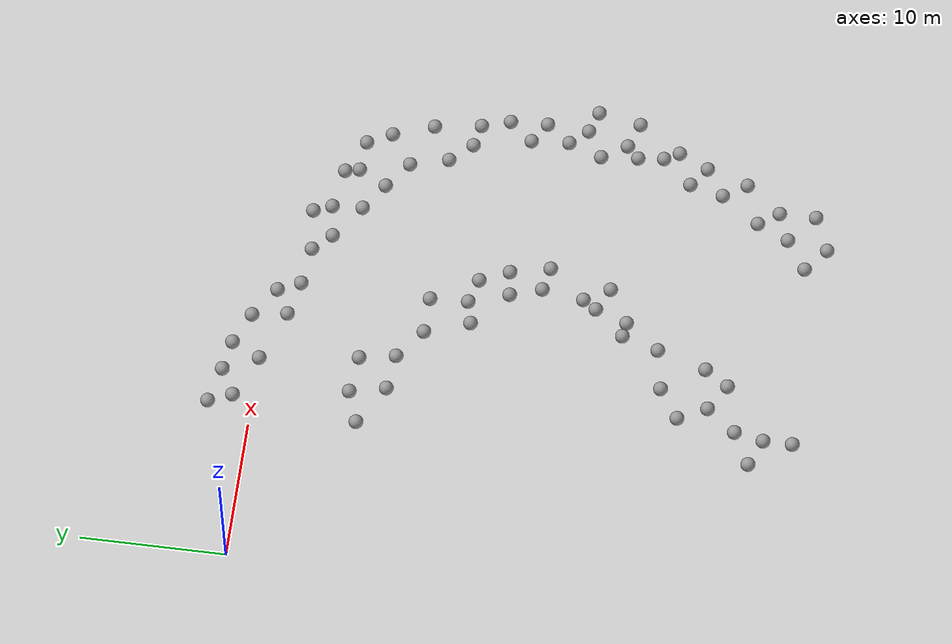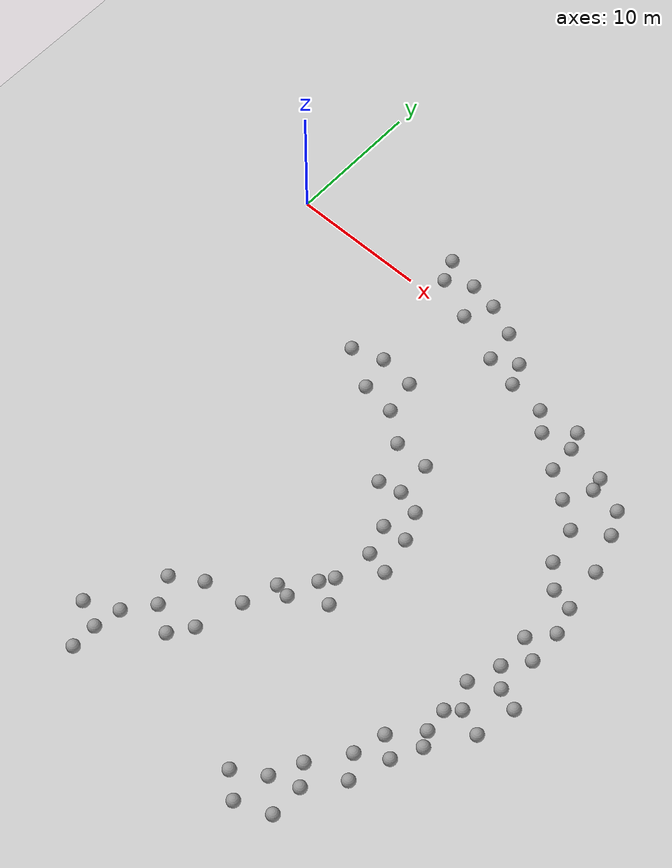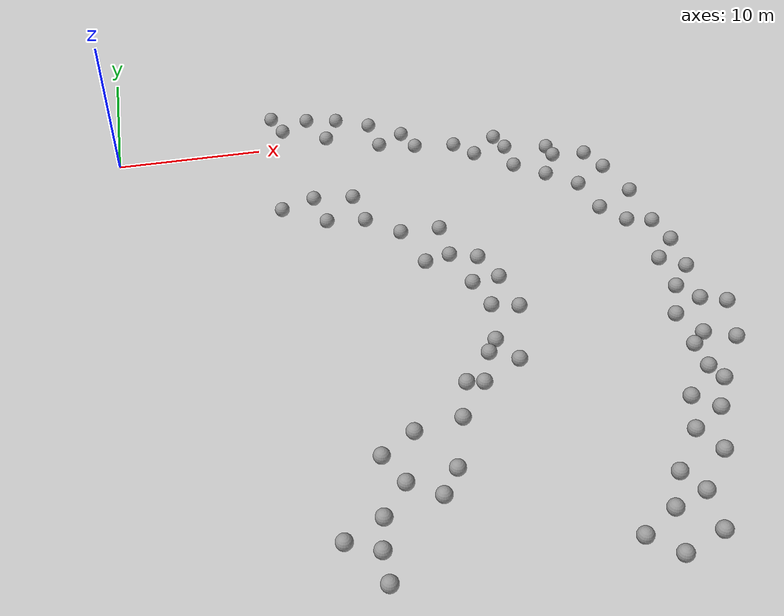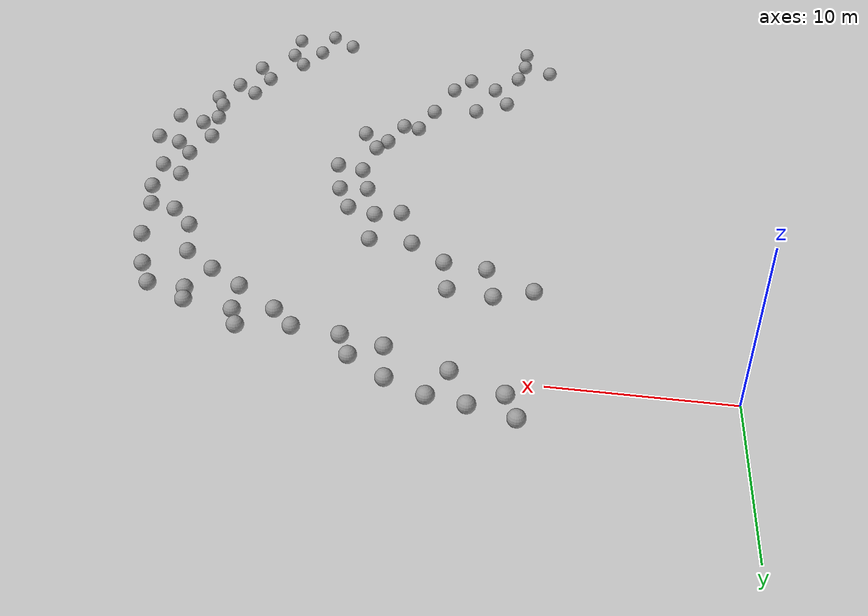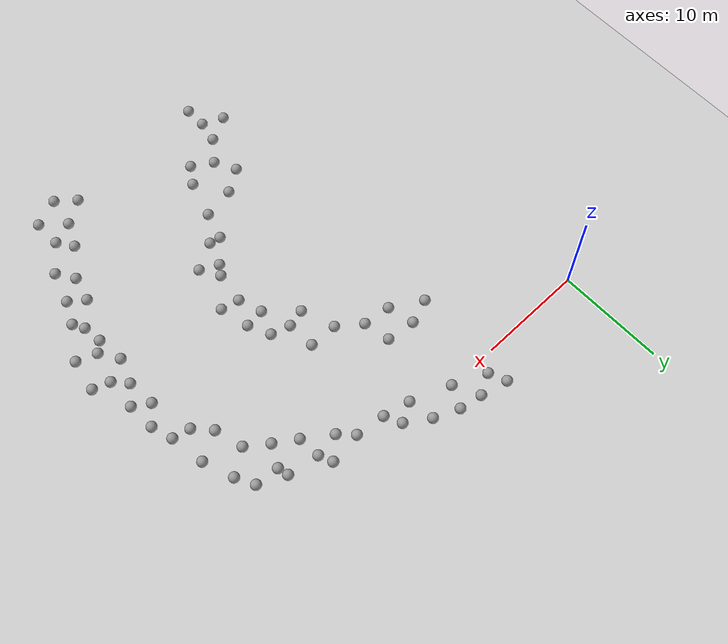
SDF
<sdf version="1.6">
 <world name="default">
  <model name="ground_plane">
   <static>1</static>
   <link name="link">
    <collision name="collision">
     <geometry><plane><normal>0 0 1</normal><size>100 100</size></plane></geometry>
     <surface><friction><ode><mu>100</mu><mu2>50</mu2></ode></friction></surface>
    </collision>
    <visual name="visual">
     <cast_shadows>0</cast_shadows>
     <geometry><plane><normal>0 0 1</normal><size>100 100</size></plane></geometry>
     <material>
      <script><uri>file://media/materials/scripts/gazebo.material</uri><name>Gazebo/Grey</name></script>
     </material>
    </visual>
   </link>
  </model>
  <model name="unit_sphere_0_clone_2">
   <pose>10.9217 -7.29328 0.5 0 -0 0</pose>
   <link name="link">
    <inertial>
     <mass>1</mass>
     <inertia><ixx>0.1</ixx><ixy>0</ixy><ixz>0</ixz><iyy>0.1</iyy><iyz>0</iyz><izz>0.1</izz></inertia>
    </inertial>
    <collision name="collision"><geometry><sphere><radius>0.5</radius></sphere></geometry></collision>
    <visual name="visual">
     <geometry><sphere><radius>0.5</radius></sphere></geometry>
     <material>
      <script><name>Gazebo/Grey</name><uri>file://media/materials/scripts/gazebo.material</uri></script>
     </material>
    </visual>
   </link>
  </model>
  <model name="unit_sphere_0_clone_3">
   <pose>13.2089 -6.50721 0.5 0 -0 0</pose>
   <link name="link">
    <inertial>
     <mass>1</mass>
     <inertia><ixx>0.1</ixx><ixy>0</ixy><ixz>0</ixz><iyy>0.1</iyy><iyz>0</iyz><izz>0.1</izz></inertia>
    </inertial>
    <collision name="collision"><geometry><sphere><radius>0.5</radius></sphere></geometry></collision>
    <visual name="visual">
     <geometry><sphere><radius>0.5</radius></sphere></geometry>
     <material>
      <script><name>Gazebo/Grey</name><uri>file://media/materials/scripts/gazebo.material</uri></script>
     </material>
    </visual>
   </link>
  </model>
  <model name="unit_sphere_0_clone_4">
   <pose>13.7778 -8.99338 0.5 0 -0 0</pose>
   <link name="link">
    <inertial>
     <mass>1</mass>
     <inertia><ixx>0.1</ixx><ixy>0</ixy><ixz>0</ixz><iyy>0.1</iyy><iyz>0</iyz><izz>0.1</izz></inertia>
    </inertial>
    <collision name="collision"><geometry><sphere><radius>0.5</radius></sphere></geometry></collision>
    <visual name="visual">
     <geometry><sphere><radius>0.5</radius></sphere></geometry>
     <material>
      <script><name>Gazebo/Grey</name><uri>file://media/materials/scripts/gazebo.material</uri></script>
     </material>
    </visual>
   </link>
  </model>
  <model name="unit_sphere_0_clone_5">
   <pose>15.8904 -6.82279 0.5 0 -0 0</pose>
   <link name="link">
    <inertial>
     <mass>1</mass>
     <inertia><ixx>0.1</ixx><ixy>0</ixy><ixz>0</ixz><iyy>0.1</iyy><iyz>0</iyz><izz>0.1</izz></inertia>
    </inertial>
    <collision name="collision"><geometry><sphere><radius>0.5</radius></sphere></geometry></collision>
    <visual name="visual">
     <geometry><sphere><radius>0.5</radius></sphere></geometry>
     <material>
      <script><name>Gazebo/Grey</name><uri>file://media/materials/scripts/gazebo.material</uri></script>
     </material>
    </visual>
   </link>
  </model>
  <model name="unit_sphere_0_clone_6">
   <pose>16.3495 -9.32648 0.5 0 -0 0</pose>
   <link name="link">
    <inertial>
     <mass>1</mass>
     <inertia><ixx>0.1</ixx><ixy>0</ixy><ixz>0</ixz><iyy>0.1</iyy><iyz>0</iyz><izz>0.1</izz></inertia>
    </inertial>
    <collision name="collision"><geometry><sphere><radius>0.5</radius></sphere></geometry></collision>
    <visual name="visual">
     <geometry><sphere><radius>0.5</radius></sphere></geometry>
     <material>
      <script><name>Gazebo/Grey</name><uri>file://media/materials/scripts/gazebo.material</uri></script>
     </material>
    </visual>
   </link>
  </model>
  <model name="unit_sphere_0_clone_10">
   <pose>11.2754 3.00631 0.5 0 -0 0</pose>
   <link name="link">
    <inertial>
     <mass>1</mass>
     <inertia><ixx>0.1</ixx><ixy>0</ixy><ixz>0</ixz><iyy>0.1</iyy><iyz>0</iyz><izz>0.1</izz></inertia>
    </inertial>
    <collision name="collision"><geometry><sphere><radius>0.5</radius></sphere></geometry></collision>
    <visual name="visual">
     <geometry><sphere><radius>0.5</radius></sphere></geometry>
     <material>
      <script><name>Gazebo/Grey</name><uri>file://media/materials/scripts/gazebo.material</uri></script>
     </material>
    </visual>
   </link>
  </model>
  <model name="unit_sphere_0_clone_11">
   <pose>11.9433 1.38371 0.5 0 -0 0</pose>
   <link name="link">
    <inertial>
     <mass>1</mass>
     <inertia><ixx>0.1</ixx><ixy>0</ixy><ixz>0</ixz><iyy>0.1</iyy><iyz>0</iyz><izz>0.1</izz></inertia>
    </inertial>
    <collision name="collision"><geometry><sphere><radius>0.5</radius></sphere></geometry></collision>
    <visual name="visual">
     <geometry><sphere><radius>0.5</radius></sphere></geometry>
     <material>
      <script><name>Gazebo/Grey</name><uri>file://media/materials/scripts/gazebo.material</uri></script>
     </material>
    </visual>
   </link>
  </model>
  <model name="unit_sphere_0_clone_12">
   <pose>13.8434 2.38423 0.5 0 -0 0</pose>
   <link name="link">
    <inertial>
     <mass>1</mass>
     <inertia><ixx>0.1</ixx><ixy>0</ixy><ixz>0</ixz><iyy>0.1</iyy><iyz>0</iyz><izz>0.1</izz></inertia>
    </inertial>
    <collision name="collision"><geometry><sphere><radius>0.5</radius></sphere></geometry></collision>
    <visual name="visual">
     <geometry><sphere><radius>0.5</radius></sphere></geometry>
     <material>
      <script><name>Gazebo/Grey</name><uri>file://media/materials/scripts/gazebo.material</uri></script>
     </material>
    </visual>
   </link>
  </model>
  <model name="unit_sphere_0_clone_13">
   <pose>15 0 0.5 0 -0 0</pose>
   <link name="link">
    <inertial>
     <mass>1</mass>
     <inertia><ixx>0.1</ixx><ixy>0</ixy><ixz>0</ixz><iyy>0.1</iyy><iyz>0</iyz><izz>0.1</izz></inertia>
    </inertial>
    <collision name="collision"><geometry><sphere><radius>0.5</radius></sphere></geometry></collision>
    <visual name="visual">
     <geometry><sphere><radius>0.5</radius></sphere></geometry>
     <material>
      <script><name>Gazebo/Grey</name><uri>file://media/materials/scripts/gazebo.material</uri></script>
     </material>
    </visual>
   </link>
  </model>
  <model name="unit_sphere_0_clone_14">
   <pose>16 2 0.5 0 -0 0</pose>
   <link name="link">
    <inertial>
     <mass>1</mass>
     <inertia><ixx>0.1</ixx><ixy>0</ixy><ixz>0</ixz><iyy>0.1</iyy><iyz>0</iyz><izz>0.1</izz></inertia>
    </inertial>
    <collision name="collision"><geometry><sphere><radius>0.5</radius></sphere></geometry></collision>
    <visual name="visual">
     <geometry><sphere><radius>0.5</radius></sphere></geometry>
     <material>
      <script><name>Gazebo/Grey</name><uri>file://media/materials/scripts/gazebo.material</uri></script>
     </material>
    </visual>
   </link>
  </model>
  <model name="unit_sphere_0_clone_15">
   <pose>18.3018 0.995003 0.5 0 -0 0</pose>
   <link name="link">
    <inertial>
     <mass>1</mass>
     <inertia><ixx>0.1</ixx><ixy>0</ixy><ixz>0</ixz><iyy>0.1</iyy><iyz>0</iyz><izz>0.1</izz></inertia>
    </inertial>
    <collision name="collision"><geometry><sphere><radius>0.5</radius></sphere></geometry></collision>
    <visual name="visual">
     <geometry><sphere><radius>0.5</radius></sphere></geometry>
     <material>
      <script><name>Gazebo/Grey</name><uri>file://media/materials/scripts/gazebo.material</uri></script>
     </material>
    </visual>
   </link>
  </model>
  <model name="unit_sphere_0_clone_16">
   <pose>20.4898 -0.468795 0.5 0 -0 0</pose>
   <link name="link">
    <inertial>
     <mass>1</mass>
     <inertia><ixx>0.1</ixx><ixy>0</ixy><ixz>0</ixz><iyy>0.1</iyy><iyz>0</iyz><izz>0.1</izz></inertia>
    </inertial>
    <collision name="collision"><geometry><sphere><radius>0.5</radius></sphere></geometry></collision>
    <visual name="visual">
     <geometry><sphere><radius>0.5</radius></sphere></geometry>
     <material>
      <script><name>Gazebo/Grey</name><uri>file://media/materials/scripts/gazebo.material</uri></script>
     </material>
    </visual>
   </link>
  </model>
  <model name="unit_sphere_0_clone_17">
   <pose>24.0194 -2.37066 0.5 0 -0 0</pose>
   <link name="link">
    <inertial>
     <mass>1</mass>
     <inertia><ixx>0.1</ixx><ixy>0</ixy><ixz>0</ixz><iyy>0.1</iyy><iyz>0</iyz><izz>0.1</izz></inertia>
    </inertial>
    <collision name="collision"><geometry><sphere><radius>0.5</radius></sphere></geometry></collision>
    <visual name="visual">
     <geometry><sphere><radius>0.5</radius></sphere></geometry>
     <material>
      <script><name>Gazebo/Grey</name><uri>file://media/materials/scripts/gazebo.material</uri></script>
     </material>
    </visual>
   </link>
  </model>
  <model name="unit_sphere_0_clone_18">
   <pose>27.7503 -5.42436 0.5 0 -0 0</pose>
   <link name="link">
    <inertial>
     <mass>1</mass>
     <inertia><ixx>0.1</ixx><ixy>0</ixy><ixz>0</ixz><iyy>0.1</iyy><iyz>0</iyz><izz>0.1</izz></inertia>
    </inertial>
    <collision name="collision"><geometry><sphere><radius>0.5</radius></sphere></geometry></collision>
    <visual name="visual">
     <geometry><sphere><radius>0.5</radius></sphere></geometry>
     <material>
      <script><name>Gazebo/Grey</name><uri>file://media/materials/scripts/gazebo.material</uri></script>
     </material>
    </visual>
   </link>
  </model>
  <model name="unit_sphere_0_clone_19">
   <pose>31.6938 -8.24862 0.5 0 -0 0</pose>
   <link name="link">
    <inertial>
     <mass>1</mass>
     <inertia><ixx>0.1</ixx><ixy>0</ixy><ixz>0</ixz><iyy>0.1</iyy><iyz>0</iyz><izz>0.1</izz></inertia>
    </inertial>
    <collision name="collision"><geometry><sphere><radius>0.5</radius></sphere></geometry></collision>
    <visual name="visual">
     <geometry><sphere><radius>0.5</radius></sphere></geometry>
     <material>
      <script><name>Gazebo/Grey</name><uri>file://media/materials/scripts/gazebo.material</uri></script>
     </material>
    </visual>
   </link>
  </model>
  <model name="unit_sphere_0_clone_20">
   <pose>33.8259 -12.4839 0.5 0 -0 0</pose>
   <link name="link">
    <inertial>
     <mass>1</mass>
     <inertia><ixx>0.1</ixx><ixy>0</ixy><ixz>0</ixz><iyy>0.1</iyy><iyz>0</iyz><izz>0.1</izz></inertia>
    </inertial>
    <collision name="collision"><geometry><sphere><radius>0.5</radius></sphere></geometry></collision>
    <visual name="visual">
     <geometry><sphere><radius>0.5</radius></sphere></geometry>
     <material>
      <script><name>Gazebo/Grey</name><uri>file://media/materials/scripts/gazebo.material</uri></script>
     </material>
    </visual>
   </link>
  </model>
  <model name="unit_sphere_0_clone_21">
   <pose>34.8751 -19.1706 0.5 0 -0 0</pose>
   <link name="link">
    <inertial>
     <mass>1</mass>
     <inertia><ixx>0.1</ixx><ixy>0</ixy><ixz>0</ixz><iyy>0.1</iyy><iyz>0</iyz><izz>0.1</izz></inertia>
    </inertial>
    <collision name="collision"><geometry><sphere><radius>0.5</radius></sphere></geometry></collision>
    <visual name="visual">
     <geometry><sphere><radius>0.5</radius></sphere></geometry>
     <material>
      <script><name>Gazebo/Grey</name><uri>file://media/materials/scripts/gazebo.material</uri></script>
     </material>
    </visual>
   </link>
  </model>
  <model name="unit_sphere_0_clone_22">
   <pose>34.4274 -25.9481 0.5 0 -0 0</pose>
   <link name="link">
    <inertial>
     <mass>1</mass>
     <inertia><ixx>0.1</ixx><ixy>0</ixy><ixz>0</ixz><iyy>0.1</iyy><iyz>0</iyz><izz>0.1</izz></inertia>
    </inertial>
    <collision name="collision"><geometry><sphere><radius>0.5</radius></sphere></geometry></collision>
    <visual name="visual">
     <geometry><sphere><radius>0.5</radius></sphere></geometry>
     <material>
      <script><name>Gazebo/Grey</name><uri>file://media/materials/scripts/gazebo.material</uri></script>
     </material>
    </visual>
   </link>
  </model>
  <model name="unit_sphere_0_clone_23">
   <pose>28.938 -35.2104 0.5 0 -0 0</pose>
   <link name="link">
    <inertial>
     <mass>1</mass>
     <inertia><ixx>0.1</ixx><ixy>0</ixy><ixz>0</ixz><iyy>0.1</iyy><iyz>0</iyz><izz>0.1</izz></inertia>
    </inertial>
    <collision name="collision"><geometry><sphere><radius>0.5</radius></sphere></geometry></collision>
    <visual name="visual">
     <geometry><sphere><radius>0.5</radius></sphere></geometry>
     <material>
      <script><name>Gazebo/Grey</name><uri>file://media/materials/scripts/gazebo.material</uri></script>
     </material>
    </visual>
   </link>
  </model>
  <model name="unit_sphere_0_clone_50">
   <pose>18.4855 -10.9718 0.5 0 -0 0</pose>
   <link name="link">
    <inertial>
     <mass>1</mass>
     <inertia><ixx>0.1</ixx><ixy>0</ixy><ixz>0</ixz><iyy>0.1</iyy><iyz>0</iyz><izz>0.1</izz></inertia>
    </inertial>
    <collision name="collision"><geometry><sphere><radius>0.5</radius></sphere></geometry></collision>
    <visual name="visual">
     <geometry><sphere><radius>0.5</radius></sphere></geometry>
     <material>
      <script><name>Gazebo/Grey</name><uri>file://media/materials/scripts/gazebo.material</uri></script>
     </material>
    </visual>
   </link>
  </model>
  <model name="unit_sphere_0_clone_51">
   <pose>19.5585 -14.0831 0.5 0 -0 0</pose>
   <link name="link">
    <inertial>
     <mass>1</mass>
     <inertia><ixx>0.1</ixx><ixy>0</ixy><ixz>0</ixz><iyy>0.1</iyy><iyz>0</iyz><izz>0.1</izz></inertia>
    </inertial>
    <collision name="collision"><geometry><sphere><radius>0.5</radius></sphere></geometry></collision>
    <visual name="visual">
     <geometry><sphere><radius>0.5</radius></sphere></geometry>
     <material>
      <script><name>Gazebo/Grey</name><uri>file://media/materials/scripts/gazebo.material</uri></script>
     </material>
    </visual>
   </link>
  </model>
  <model name="unit_sphere_0_clone_52">
   <pose>22.8458 -18.6808 0.5 0 -0 0</pose>
   <link name="link">
    <inertial>
     <mass>1</mass>
     <inertia><ixx>0.1</ixx><ixy>0</ixy><ixz>0</ixz><iyy>0.1</iyy><iyz>0</iyz><izz>0.1</izz></inertia>
    </inertial>
    <collision name="collision"><geometry><sphere><radius>0.5</radius></sphere></geometry></collision>
    <visual name="visual">
     <geometry><sphere><radius>0.5</radius></sphere></geometry>
     <material>
      <script><name>Gazebo/Grey</name><uri>file://media/materials/scripts/gazebo.material</uri></script>
     </material>
    </visual>
   </link>
  </model>
  <model name="unit_sphere_0_clone_53">
   <pose>20.9303 -24.7685 0.5 0.010421 0.063507 0.000342</pose>
   <link name="link">
    <inertial>
     <mass>1</mass>
     <inertia><ixx>0.1</ixx><ixy>0</ixy><ixz>0</ixz><iyy>0.1</iyy><iyz>0</iyz><izz>0.1</izz></inertia>
    </inertial>
    <collision name="collision"><geometry><sphere><radius>0.5</radius></sphere></geometry></collision>
    <visual name="visual">
     <geometry><sphere><radius>0.5</radius></sphere></geometry>
     <material>
      <script><name>Gazebo/Grey</name><uri>file://media/materials/scripts/gazebo.material</uri></script>
     </material>
    </visual>
   </link>
  </model>
  <model name="unit_sphere_0_clone_54">
   <pose>16.882 -32.1756 0.5 0 -0 0</pose>
   <link name="link">
    <inertial>
     <mass>1</mass>
     <inertia><ixx>0.1</ixx><ixy>0</ixy><ixz>0</ixz><iyy>0.1</iyy><iyz>0</iyz><izz>0.1</izz></inertia>
    </inertial>
    <collision name="collision"><geometry><sphere><radius>0.5</radius></sphere></geometry></collision>
    <visual name="visual">
     <geometry><sphere><radius>0.5</radius></sphere></geometry>
     <material>
      <script><name>Gazebo/Grey</name><uri>file://media/materials/scripts/gazebo.material</uri></script>
     </material>
    </visual>
   </link>
  </model>
  <model name="unit_sphere_0_clone_70">
   <pose>22.1416 -16.4882 0.5 0 -0 0</pose>
   <link name="link">
    <inertial>
     <mass>1</mass>
     <inertia><ixx>0.1</ixx><ixy>0</ixy><ixz>0</ixz><iyy>0.1</iyy><iyz>0</iyz><izz>0.1</izz></inertia>
    </inertial>
    <collision name="collision"><geometry><sphere><radius>0.5</radius></sphere></geometry></collision>
    <visual name="visual">
     <geometry><sphere><radius>0.5</radius></sphere></geometry>
     <material>
      <script><name>Gazebo/Grey</name><uri>file://media/materials/scripts/gazebo.material</uri></script>
     </material>
    </visual>
   </link>
  </model>
  <model name="unit_sphere_0_clone_71">
   <pose>21.7439 -22.539 0.5 0 -0 0</pose>
   <link name="link">
    <inertial>
     <mass>1</mass>
     <inertia><ixx>0.1</ixx><ixy>0</ixy><ixz>0</ixz><iyy>0.1</iyy><iyz>0</iyz><izz>0.1</izz></inertia>
    </inertial>
    <collision name="collision"><geometry><sphere><radius>0.5</radius></sphere></geometry></collision>
    <visual name="visual">
     <geometry><sphere><radius>0.5</radius></sphere></geometry>
     <material>
      <script><name>Gazebo/Grey</name><uri>file://media/materials/scripts/gazebo.material</uri></script>
     </material>
    </visual>
   </link>
  </model>
  <model name="unit_sphere_0_clone_72">
   <pose>16.1207 -27.6464 0.5 0 -0 0</pose>
   <link name="link">
    <inertial>
     <mass>1</mass>
     <inertia><ixx>0.1</ixx><ixy>0</ixy><ixz>0</ixz><iyy>0.1</iyy><iyz>0</iyz><izz>0.1</izz></inertia>
    </inertial>
    <collision name="collision"><geometry><sphere><radius>0.5</radius></sphere></geometry></collision>
    <visual name="visual">
     <geometry><sphere><radius>0.5</radius></sphere></geometry>
     <material>
      <script><name>Gazebo/Grey</name><uri>file://media/materials/scripts/gazebo.material</uri></script>
     </material>
    </visual>
   </link>
  </model>
  <model name="unit_sphere_0_clone_73">
   <pose>11.0955 -34.1517 0.5 0 -0 0</pose>
   <link name="link">
    <inertial>
     <mass>1</mass>
     <inertia><ixx>0.1</ixx><ixy>0</ixy><ixz>0</ixz><iyy>0.1</iyy><iyz>0</iyz><izz>0.1</izz></inertia>
    </inertial>
    <collision name="collision"><geometry><sphere><radius>0.5</radius></sphere></geometry></collision>
    <visual name="visual">
     <geometry><sphere><radius>0.5</radius></sphere></geometry>
     <material>
      <script><name>Gazebo/Grey</name><uri>file://media/materials/scripts/gazebo.material</uri></script>
     </material>
    </visual>
   </link>
  </model>
  <model name="unit_sphere_0_clone_115">
   <pose>27.0928 -2.03293 0.5 0 -0 0</pose>
   <link name="link">
    <inertial>
     <mass>1</mass>
     <inertia><ixx>0.1</ixx><ixy>0</ixy><ixz>0</ixz><iyy>0.1</iyy><iyz>0</iyz><izz>0.1</izz></inertia>
    </inertial>
    <collision name="collision"><geometry><sphere><radius>0.5</radius></sphere></geometry></collision>
    <visual name="visual">
     <geometry><sphere><radius>0.5</radius></sphere></geometry>
     <material>
      <script><name>Gazebo/Grey</name><uri>file://media/materials/scripts/gazebo.material</uri></script>
     </material>
    </visual>
   </link>
  </model>
  <model name="unit_sphere_0_clone_116">
   <pose>30.5875 -3.79442 0.5 -0.027113 -0.006178 6.5e-05</pose>
   <link name="link">
    <inertial>
     <mass>1</mass>
     <inertia><ixx>0.1</ixx><ixy>0</ixy><ixz>0</ixz><iyy>0.1</iyy><iyz>0</iyz><izz>0.1</izz></inertia>
    </inertial>
    <collision name="collision"><geometry><sphere><radius>0.5</radius></sphere></geometry></collision>
    <visual name="visual">
     <geometry><sphere><radius>0.5</radius></sphere></geometry>
     <material>
      <script><name>Gazebo/Grey</name><uri>file://media/materials/scripts/gazebo.material</uri></script>
     </material>
    </visual>
   </link>
  </model>
  <model name="unit_sphere_0_clone_117">
   <pose>35 -9.57963 0.5 0 -0 0</pose>
   <link name="link">
    <inertial>
     <mass>1</mass>
     <inertia><ixx>0.1</ixx><ixy>0</ixy><ixz>0</ixz><iyy>0.1</iyy><iyz>0</iyz><izz>0.1</izz></inertia>
    </inertial>
    <collision name="collision"><geometry><sphere><radius>0.5</radius></sphere></geometry></collision>
    <visual name="visual">
     <geometry><sphere><radius>0.5</radius></sphere></geometry>
     <material>
      <script><name>Gazebo/Grey</name><uri>file://media/materials/scripts/gazebo.material</uri></script>
     </material>
    </visual>
   </link>
  </model>
  <model name="unit_sphere_0_clone_118">
   <pose>34.6829 -16.5119 0.5 0 -0 0</pose>
   <link name="link">
    <inertial>
     <mass>1</mass>
     <inertia><ixx>0.1</ixx><ixy>0</ixy><ixz>0</ixz><iyy>0.1</iyy><iyz>0</iyz><izz>0.1</izz></inertia>
    </inertial>
    <collision name="collision"><geometry><sphere><radius>0.5</radius></sphere></geometry></collision>
    <visual name="visual">
     <geometry><sphere><radius>0.5</radius></sphere></geometry>
     <material>
      <script><name>Gazebo/Grey</name><uri>file://media/materials/scripts/gazebo.material</uri></script>
     </material>
    </visual>
   </link>
  </model>
  <model name="unit_sphere_0_clone_119">
   <pose>35.1208 -23.2991 0.5 0 -0 0</pose>
   <link name="link">
    <inertial>
     <mass>1</mass>
     <inertia><ixx>0.1</ixx><ixy>0</ixy><ixz>0</ixz><iyy>0.1</iyy><iyz>0</iyz><izz>0.1</izz></inertia>
    </inertial>
    <collision name="collision"><geometry><sphere><radius>0.5</radius></sphere></geometry></collision>
    <visual name="visual">
     <geometry><sphere><radius>0.5</radius></sphere></geometry>
     <material>
      <script><name>Gazebo/Grey</name><uri>file://media/materials/scripts/gazebo.material</uri></script>
     </material>
    </visual>
   </link>
  </model>
  <model name="unit_sphere_0_clone_120">
   <pose>31.9432 -30.3419 0.5 0 -0 0</pose>
   <link name="link">
    <inertial>
     <mass>1</mass>
     <inertia><ixx>0.1</ixx><ixy>0</ixy><ixz>0</ixz><iyy>0.1</iyy><iyz>0</iyz><izz>0.1</izz></inertia>
    </inertial>
    <collision name="collision"><geometry><sphere><radius>0.5</radius></sphere></geometry></collision>
    <visual name="visual">
     <geometry><sphere><radius>0.5</radius></sphere></geometry>
     <material>
      <script><name>Gazebo/Grey</name><uri>file://media/materials/scripts/gazebo.material</uri></script>
     </material>
    </visual>
   </link>
  </model>
  <model name="unit_sphere_0_clone_121">
   <pose>31 -34.4472 0.5 0 -0 0</pose>
   <link name="link">
    <inertial>
     <mass>1</mass>
     <inertia><ixx>0.1</ixx><ixy>0</ixy><ixz>0</ixz><iyy>0.1</iyy><iyz>0</iyz><izz>0.1</izz></inertia>
    </inertial>
    <collision name="collision"><geometry><sphere><radius>0.5</radius></sphere></geometry></collision>
    <visual name="visual">
     <geometry><sphere><radius>0.5</radius></sphere></geometry>
     <material>
      <script><name>Gazebo/Grey</name><uri>file://media/materials/scripts/gazebo.material</uri></script>
     </material>
    </visual>
   </link>
  </model>
  <model name="unit_sphere_0_clone_122">
   <pose>33.9652 -29.0773 0.5 0 -0 0</pose>
   <link name="link">
    <inertial>
     <mass>1</mass>
     <inertia><ixx>0.1</ixx><ixy>0</ixy><ixz>0</ixz><iyy>0.1</iyy><iyz>0</iyz><izz>0.1</izz></inertia>
    </inertial>
    <collision name="collision"><geometry><sphere><radius>0.5</radius></sphere></geometry></collision>
    <visual name="visual">
     <geometry><sphere><radius>0.5</radius></sphere></geometry>
     <material>
      <script><name>Gazebo/Grey</name><uri>file://media/materials/scripts/gazebo.material</uri></script>
     </material>
    </visual>
   </link>
  </model>
  <model name="unit_sphere_0_clone_123">
   <pose>26.7672 -36.5826 0.5 0 -0 0</pose>
   <link name="link">
    <inertial>
     <mass>1</mass>
     <inertia><ixx>0.1</ixx><ixy>0</ixy><ixz>0</ixz><iyy>0.1</iyy><iyz>0</iyz><izz>0.1</izz></inertia>
    </inertial>
    <collision name="collision"><geometry><sphere><radius>0.5</radius></sphere></geometry></collision>
    <visual name="visual">
     <geometry><sphere><radius>0.5</radius></sphere></geometry>
     <material>
      <script><name>Gazebo/Grey</name><uri>file://media/materials/scripts/gazebo.material</uri></script>
     </material>
    </visual>
   </link>
  </model>
  <model name="unit_sphere_1">
   <pose>35.4809 -12.8641 0.5 0 -0 0</pose>
   <link name="link">
    <inertial>
     <mass>1</mass>
     <inertia><ixx>0.1</ixx><ixy>0</ixy><ixz>0</ixz><iyy>0.1</iyy><iyz>0</iyz><izz>0.1</izz></inertia>
    </inertial>
    <collision name="collision"><geometry><sphere><radius>0.5</radius></sphere></geometry></collision>
    <visual name="visual">
     <geometry><sphere><radius>0.5</radius></sphere></geometry>
     <material>
      <script><name>Gazebo/Grey</name><uri>file://media/materials/scripts/gazebo.material</uri></script>
     </material>
    </visual>
   </link>
  </model>
  <model name="unit_sphere_1_clone">
   <pose>36.0806 -14.8694 0.5 0 -0 0</pose>
   <link name="link">
    <inertial>
     <mass>1</mass>
     <inertia><ixx>0.1</ixx><ixy>0</ixy><ixz>0</ixz><iyy>0.1</iyy><iyz>0</iyz><izz>0.1</izz></inertia>
    </inertial>
    <collision name="collision"><geometry><sphere><radius>0.5</radius></sphere></geometry></collision>
    <visual name="visual">
     <geometry><sphere><radius>0.5</radius></sphere></geometry>
     <material>
      <script><name>Gazebo/Grey</name><uri>file://media/materials/scripts/gazebo.material</uri></script>
     </material>
    </visual>
   </link>
  </model>
  <model name="unit_sphere_1_clone_0">
   <pose>36.1901 -17.4913 0.5 0 -0 0</pose>
   <link name="link">
    <inertial>
     <mass>1</mass>
     <inertia><ixx>0.1</ixx><ixy>0</ixy><ixz>0</ixz><iyy>0.1</iyy><iyz>0</iyz><izz>0.1</izz></inertia>
    </inertial>
    <collision name="collision"><geometry><sphere><radius>0.5</radius></sphere></geometry></collision>
    <visual name="visual">
     <geometry><sphere><radius>0.5</radius></sphere></geometry>
     <material>
      <script><name>Gazebo/Grey</name><uri>file://media/materials/scripts/gazebo.material</uri></script>
     </material>
    </visual>
   </link>
  </model>
  <model name="unit_sphere_1_clone_1">
   <pose>36 -20.4393 0.5 0 -0 0</pose>
   <link name="link">
    <inertial>
     <mass>1</mass>
     <inertia><ixx>0.1</ixx><ixy>0</ixy><ixz>0</ixz><iyy>0.1</iyy><iyz>0</iyz><izz>0.1</izz></inertia>
    </inertial>
    <collision name="collision"><geometry><sphere><radius>0.5</radius></sphere></geometry></collision>
    <visual name="visual">
     <geometry><sphere><radius>0.5</radius></sphere></geometry>
     <material>
      <script><name>Gazebo/Grey</name><uri>file://media/materials/scripts/gazebo.material</uri></script>
     </material>
    </visual>
   </link>
  </model>
  <model name="unit_sphere_1_clone_2">
   <pose>21.1177 -11.0515 0.5 0 -0 0</pose>
   <link name="link">
    <inertial>
     <mass>1</mass>
     <inertia><ixx>0.1</ixx><ixy>0</ixy><ixz>0</ixz><iyy>0.1</iyy><iyz>0</iyz><izz>0.1</izz></inertia>
    </inertial>
    <collision name="collision"><geometry><sphere><radius>0.5</radius></sphere></geometry></collision>
    <visual name="visual">
     <geometry><sphere><radius>0.5</radius></sphere></geometry>
     <material>
      <script><name>Gazebo/Grey</name><uri>file://media/materials/scripts/gazebo.material</uri></script>
     </material>
    </visual>
   </link>
  </model>
  <model name="unit_sphere_1_clone_3">
   <pose>23.01 -14.2563 0.5 0 -0 0</pose>
   <link name="link">
    <inertial>
     <mass>1</mass>
     <inertia><ixx>0.1</ixx><ixy>0</ixy><ixz>0</ixz><iyy>0.1</iyy><iyz>0</iyz><izz>0.1</izz></inertia>
    </inertial>
    <collision name="collision"><geometry><sphere><radius>0.5</radius></sphere></geometry></collision>
    <visual name="visual">
     <geometry><sphere><radius>0.5</radius></sphere></geometry>
     <material>
      <script><name>Gazebo/Grey</name><uri>file://media/materials/scripts/gazebo.material</uri></script>
     </material>
    </visual>
   </link>
  </model>
  <model name="unit_sphere_1_clone_4">
   <pose>21.2329 -13.709 0.5 0 -0 0</pose>
   <link name="link">
    <inertial>
     <mass>1</mass>
     <inertia><ixx>0.1</ixx><ixy>0</ixy><ixz>0</ixz><iyy>0.1</iyy><iyz>0</iyz><izz>0.1</izz></inertia>
    </inertial>
    <collision name="collision"><geometry><sphere><radius>0.5</radius></sphere></geometry></collision>
    <visual name="visual">
     <geometry><sphere><radius>0.5</radius></sphere></geometry>
     <material>
      <script><name>Gazebo/Grey</name><uri>file://media/materials/scripts/gazebo.material</uri></script>
     </material>
    </visual>
   </link>
  </model>
  <model name="unit_sphere_1_clone_5">
   <pose>23.9283 -16.2918 0.5 0 -0 0</pose>
   <link name="link">
    <inertial>
     <mass>1</mass>
     <inertia><ixx>0.1</ixx><ixy>0</ixy><ixz>0</ixz><iyy>0.1</iyy><iyz>0</iyz><izz>0.1</izz></inertia>
    </inertial>
    <collision name="collision"><geometry><sphere><radius>0.5</radius></sphere></geometry></collision>
    <visual name="visual">
     <geometry><sphere><radius>0.5</radius></sphere></geometry>
     <material>
      <script><name>Gazebo/Grey</name><uri>file://media/materials/scripts/gazebo.material</uri></script>
     </material>
    </visual>
   </link>
  </model>
  <model name="unit_sphere_1_clone_6">
   <pose>24.5591 -19.0687 0.5 0 -0 0</pose>
   <link name="link">
    <inertial>
     <mass>1</mass>
     <inertia><ixx>0.1</ixx><ixy>0</ixy><ixz>0</ixz><iyy>0.1</iyy><iyz>0</iyz><izz>0.1</izz></inertia>
    </inertial>
    <collision name="collision"><geometry><sphere><radius>0.5</radius></sphere></geometry></collision>
    <visual name="visual">
     <geometry><sphere><radius>0.5</radius></sphere></geometry>
     <material>
      <script><name>Gazebo/Grey</name><uri>file://media/materials/scripts/gazebo.material</uri></script>
     </material>
    </visual>
   </link>
  </model>
  <model name="unit_sphere_1_clone_7">
   <pose>22.387 -21.6067 0.5 0 -0 0</pose>
   <link name="link">
    <inertial>
     <mass>1</mass>
     <inertia><ixx>0.1</ixx><ixy>0</ixy><ixz>0</ixz><iyy>0.1</iyy><iyz>0</iyz><izz>0.1</izz></inertia>
    </inertial>
    <collision name="collision"><geometry><sphere><radius>0.5</radius></sphere></geometry></collision>
    <visual name="visual">
     <geometry><sphere><radius>0.5</radius></sphere></geometry>
     <material>
      <script><name>Gazebo/Grey</name><uri>file://media/materials/scripts/gazebo.material</uri></script>
     </material>
    </visual>
   </link>
  </model>
  <model name="unit_sphere_1_clone_8">
   <pose>23.4368 -23.3859 0.5 0 -0 0</pose>
   <link name="link">
    <inertial>
     <mass>1</mass>
     <inertia><ixx>0.1</ixx><ixy>0</ixy><ixz>0</ixz><iyy>0.1</iyy><iyz>0</iyz><izz>0.1</izz></inertia>
    </inertial>
    <collision name="collision"><geometry><sphere><radius>0.5</radius></sphere></geometry></collision>
    <visual name="visual">
     <geometry><sphere><radius>0.5</radius></sphere></geometry>
     <material>
      <script><name>Gazebo/Grey</name><uri>file://media/materials/scripts/gazebo.material</uri></script>
     </material>
    </visual>
   </link>
  </model>
  <model name="unit_sphere_1_clone_9">
   <pose>19.8801 -24.5966 0.5 -0.010448 -0.063271 0.00034</pose>
   <link name="link">
    <inertial>
     <mass>1</mass>
     <inertia><ixx>0.1</ixx><ixy>0</ixy><ixz>0</ixz><iyy>0.1</iyy><iyz>0</iyz><izz>0.1</izz></inertia>
    </inertial>
    <collision name="collision"><geometry><sphere><radius>0.5</radius></sphere></geometry></collision>
    <visual name="visual">
     <geometry><sphere><radius>0.5</radius></sphere></geometry>
     <material>
      <script><name>Gazebo/Grey</name><uri>file://media/materials/scripts/gazebo.material</uri></script>
     </material>
    </visual>
   </link>
  </model>
  <model name="unit_sphere_1_clone_10">
   <pose>19.0775 -27.1391 0.5 0 -0 0</pose>
   <link name="link">
    <inertial>
     <mass>1</mass>
     <inertia><ixx>0.1</ixx><ixy>0</ixy><ixz>0</ixz><iyy>0.1</iyy><iyz>0</iyz><izz>0.1</izz></inertia>
    </inertial>
    <collision name="collision"><geometry><sphere><radius>0.5</radius></sphere></geometry></collision>
    <visual name="visual">
     <geometry><sphere><radius>0.5</radius></sphere></geometry>
     <material>
      <script><name>Gazebo/Grey</name><uri>file://media/materials/scripts/gazebo.material</uri></script>
     </material>
    </visual>
   </link>
  </model>
  <model name="unit_sphere_1_clone_11">
   <pose>18 -30.5615 0.5 0 -0 0</pose>
   <link name="link">
    <inertial>
     <mass>1</mass>
     <inertia><ixx>0.1</ixx><ixy>0</ixy><ixz>0</ixz><iyy>0.1</iyy><iyz>0</iyz><izz>0.1</izz></inertia>
    </inertial>
    <collision name="collision"><geometry><sphere><radius>0.5</radius></sphere></geometry></collision>
    <visual name="visual">
     <geometry><sphere><radius>0.5</radius></sphere></geometry>
     <material>
      <script><name>Gazebo/Grey</name><uri>file://media/materials/scripts/gazebo.material</uri></script>
     </material>
    </visual>
   </link>
  </model>
  <model name="unit_sphere_1_clone_12">
   <pose>14 -29 0.5 0 -0 0</pose>
   <link name="link">
    <inertial>
     <mass>1</mass>
     <inertia><ixx>0.1</ixx><ixy>0</ixy><ixz>0</ixz><iyy>0.1</iyy><iyz>0</iyz><izz>0.1</izz></inertia>
    </inertial>
    <collision name="collision"><geometry><sphere><radius>0.5</radius></sphere></geometry></collision>
    <visual name="visual">
     <geometry><sphere><radius>0.5</radius></sphere></geometry>
     <material>
      <script><name>Gazebo/Grey</name><uri>file://media/materials/scripts/gazebo.material</uri></script>
     </material>
    </visual>
   </link>
  </model>
  <model name="unit_sphere_1_clone_13">
   <pose>15 -31 0.5 0 -0 0</pose>
   <link name="link">
    <inertial>
     <mass>1</mass>
     <inertia><ixx>0.1</ixx><ixy>0</ixy><ixz>0</ixz><iyy>0.1</iyy><iyz>0</iyz><izz>0.1</izz></inertia>
    </inertial>
    <collision name="collision"><geometry><sphere><radius>0.5</radius></sphere></geometry></collision>
    <visual name="visual">
     <geometry><sphere><radius>0.5</radius></sphere></geometry>
     <material>
      <script><name>Gazebo/Grey</name><uri>file://media/materials/scripts/gazebo.material</uri></script>
     </material>
    </visual>
   </link>
  </model>
  <model name="unit_sphere_1_clone_14">
   <pose>13.4163 -33 0.5 0 -0 0</pose>
   <link name="link">
    <inertial>
     <mass>1</mass>
     <inertia><ixx>0.1</ixx><ixy>0</ixy><ixz>0</ixz><iyy>0.1</iyy><iyz>0</iyz><izz>0.1</izz></inertia>
    </inertial>
    <collision name="collision"><geometry><sphere><radius>0.5</radius></sphere></geometry></collision>
    <visual name="visual">
     <geometry><sphere><radius>0.5</radius></sphere></geometry>
     <material>
      <script><name>Gazebo/Grey</name><uri>file://media/materials/scripts/gazebo.material</uri></script>
     </material>
    </visual>
   </link>
  </model>
  <model name="unit_sphere_1_clone_15">
   <pose>13 -35 0.5 0 -0 0</pose>
   <link name="link">
    <inertial>
     <mass>1</mass>
     <inertia><ixx>0.1</ixx><ixy>0</ixy><ixz>0</ixz><iyy>0.1</iyy><iyz>0</iyz><izz>0.1</izz></inertia>
    </inertial>
    <collision name="collision"><geometry><sphere><radius>0.5</radius></sphere></geometry></collision>
    <visual name="visual">
     <geometry><sphere><radius>0.5</radius></sphere></geometry>
     <material>
      <script><name>Gazebo/Grey</name><uri>file://media/materials/scripts/gazebo.material</uri></script>
     </material>
    </visual>
   </link>
  </model>
  <model name="unit_sphere_1_clone_16">
   <pose>13 -37 0.5 0 -0 0</pose>
   <link name="link">
    <inertial>
     <mass>1</mass>
     <inertia><ixx>0.1</ixx><ixy>0</ixy><ixz>0</ixz><iyy>0.1</iyy><iyz>0</iyz><izz>0.1</izz></inertia>
    </inertial>
    <collision name="collision"><geometry><sphere><radius>0.5</radius></sphere></geometry></collision>
    <visual name="visual">
     <geometry><sphere><radius>0.5</radius></sphere></geometry>
     <material>
      <script><name>Gazebo/Grey</name><uri>file://media/materials/scripts/gazebo.material</uri></script>
     </material>
    </visual>
   </link>
  </model>
  <model name="unit_sphere_1_clone_273">
   <pose>28.4617 -38 0.5 0 -0 0</pose>
   <link name="link">
    <inertial>
     <mass>1</mass>
     <inertia><ixx>0.1</ixx><ixy>0</ixy><ixz>0</ixz><iyy>0.1</iyy><iyz>0</iyz><izz>0.1</izz></inertia>
    </inertial>
    <collision name="collision"><geometry><sphere><radius>0.5</radius></sphere></geometry></collision>
    <visual name="visual">
     <geometry><sphere><radius>0.5</radius></sphere></geometry>
     <material>
      <script><name>Gazebo/Grey</name><uri>file://media/materials/scripts/gazebo.material</uri></script>
     </material>
    </visual>
   </link>
  </model>
  <model name="unit_sphere_1_clone_274">
   <pose>31 -37 0.5 0 -0 0</pose>
   <link name="link">
    <inertial>
     <mass>1</mass>
     <inertia><ixx>0.1</ixx><ixy>0</ixy><ixz>0</ixz><iyy>0.1</iyy><iyz>0</iyz><izz>0.1</izz></inertia>
    </inertial>
    <collision name="collision"><geometry><sphere><radius>0.5</radius></sphere></geometry></collision>
    <visual name="visual">
     <geometry><sphere><radius>0.5</radius></sphere></geometry>
     <material>
      <script><name>Gazebo/Grey</name><uri>file://media/materials/scripts/gazebo.material</uri></script>
     </material>
    </visual>
   </link>
  </model>
  <model name="unit_sphere_1_clone_275">
   <pose>30 -33 0.5 0 -0 0</pose>
   <link name="link">
    <inertial>
     <mass>1</mass>
     <inertia><ixx>0.1</ixx><ixy>0</ixy><ixz>0</ixz><iyy>0.1</iyy><iyz>0</iyz><izz>0.1</izz></inertia>
    </inertial>
    <collision name="collision"><geometry><sphere><radius>0.5</radius></sphere></geometry></collision>
    <visual name="visual">
     <geometry><sphere><radius>0.5</radius></sphere></geometry>
     <material>
      <script><name>Gazebo/Grey</name><uri>file://media/materials/scripts/gazebo.material</uri></script>
     </material>
    </visual>
   </link>
  </model>
  <model name="unit_sphere_1_clone_276">
   <pose>33 -32 0.5 0 -0 0</pose>
   <link name="link">
    <inertial>
     <mass>1</mass>
     <inertia><ixx>0.1</ixx><ixy>0</ixy><ixz>0</ixz><iyy>0.1</iyy><iyz>0</iyz><izz>0.1</izz></inertia>
    </inertial>
    <collision name="collision"><geometry><sphere><radius>0.5</radius></sphere></geometry></collision>
    <visual name="visual">
     <geometry><sphere><radius>0.5</radius></sphere></geometry>
     <material>
      <script><name>Gazebo/Grey</name><uri>file://media/materials/scripts/gazebo.material</uri></script>
     </material>
    </visual>
   </link>
  </model>
  <model name="unit_sphere_1_clone_277">
   <pose>35 -27 0.5 0 -0 0</pose>
   <link name="link">
    <inertial>
     <mass>1</mass>
     <inertia><ixx>0.1</ixx><ixy>0</ixy><ixz>0</ixz><iyy>0.1</iyy><iyz>0</iyz><izz>0.1</izz></inertia>
    </inertial>
    <collision name="collision"><geometry><sphere><radius>0.5</radius></sphere></geometry></collision>
    <visual name="visual">
     <geometry><sphere><radius>0.5</radius></sphere></geometry>
     <material>
      <script><name>Gazebo/Grey</name><uri>file://media/materials/scripts/gazebo.material</uri></script>
     </material>
    </visual>
   </link>
  </model>
  <model name="unit_sphere_1_clone_278">
   <pose>32.5583 -28 0.5 0 -0 0</pose>
   <link name="link">
    <inertial>
     <mass>1</mass>
     <inertia><ixx>0.1</ixx><ixy>0</ixy><ixz>0</ixz><iyy>0.1</iyy><iyz>0</iyz><izz>0.1</izz></inertia>
    </inertial>
    <collision name="collision"><geometry><sphere><radius>0.5</radius></sphere></geometry></collision>
    <visual name="visual">
     <geometry><sphere><radius>0.5</radius></sphere></geometry>
     <material>
      <script><name>Gazebo/Grey</name><uri>file://media/materials/scripts/gazebo.material</uri></script>
     </material>
    </visual>
   </link>
  </model>
  <model name="unit_sphere_1_clone_279">
   <pose>34.2371 -24.1255 0.5 0 -0 0</pose>
   <link name="link">
    <inertial>
     <mass>1</mass>
     <inertia><ixx>0.1</ixx><ixy>0</ixy><ixz>0</ixz><iyy>0.1</iyy><iyz>0</iyz><izz>0.1</izz></inertia>
    </inertial>
    <collision name="collision"><geometry><sphere><radius>0.5</radius></sphere></geometry></collision>
    <visual name="visual">
     <geometry><sphere><radius>0.5</radius></sphere></geometry>
     <material>
      <script><name>Gazebo/Grey</name><uri>file://media/materials/scripts/gazebo.material</uri></script>
     </material>
    </visual>
   </link>
  </model>
  <model name="unit_sphere_1_clone_280">
   <pose>37 -24 0.5 0 -0 0</pose>
   <link name="link">
    <inertial>
     <mass>1</mass>
     <inertia><ixx>0.1</ixx><ixy>0</ixy><ixz>0</ixz><iyy>0.1</iyy><iyz>0</iyz><izz>0.1</izz></inertia>
    </inertial>
    <collision name="collision"><geometry><sphere><radius>0.5</radius></sphere></geometry></collision>
    <visual name="visual">
     <geometry><sphere><radius>0.5</radius></sphere></geometry>
     <material>
      <script><name>Gazebo/Grey</name><uri>file://media/materials/scripts/gazebo.material</uri></script>
     </material>
    </visual>
   </link>
  </model>
  <model name="unit_sphere_1_clone_281">
   <pose>34 -21.5266 0.5 0 -0 0</pose>
   <link name="link">
    <inertial>
     <mass>1</mass>
     <inertia><ixx>0.1</ixx><ixy>0</ixy><ixz>0</ixz><iyy>0.1</iyy><iyz>0</iyz><izz>0.1</izz></inertia>
    </inertial>
    <collision name="collision"><geometry><sphere><radius>0.5</radius></sphere></geometry></collision>
    <visual name="visual">
     <geometry><sphere><radius>0.5</radius></sphere></geometry>
     <material>
      <script><name>Gazebo/Grey</name><uri>file://media/materials/scripts/gazebo.material</uri></script>
     </material>
    </visual>
   </link>
  </model>
  <model name="unit_sphere_1_clone_282">
   <pose>37.5978 -21 0.5 0 -0 0</pose>
   <link name="link">
    <inertial>
     <mass>1</mass>
     <inertia><ixx>0.1</ixx><ixy>0</ixy><ixz>0</ixz><iyy>0.1</iyy><iyz>0</iyz><izz>0.1</izz></inertia>
    </inertial>
    <collision name="collision"><geometry><sphere><radius>0.5</radius></sphere></geometry></collision>
    <visual name="visual">
     <geometry><sphere><radius>0.5</radius></sphere></geometry>
     <material>
      <script><name>Gazebo/Grey</name><uri>file://media/materials/scripts/gazebo.material</uri></script>
     </material>
    </visual>
   </link>
  </model>
  <model name="unit_sphere_1_clone_283">
   <pose>33.0909 -4.99355 0.5 0 -0 0</pose>
   <link name="link">
    <inertial>
     <mass>1</mass>
     <inertia><ixx>0.1</ixx><ixy>0</ixy><ixz>0</ixz><iyy>0.1</iyy><iyz>0</iyz><izz>0.1</izz></inertia>
    </inertial>
    <collision name="collision"><geometry><sphere><radius>0.5</radius></sphere></geometry></collision>
    <visual name="visual">
     <geometry><sphere><radius>0.5</radius></sphere></geometry>
     <material>
      <script><name>Gazebo/Grey</name><uri>file://media/materials/scripts/gazebo.material</uri></script>
     </material>
    </visual>
   </link>
  </model>
  <model name="unit_sphere_1_clone_284">
   <pose>32.4057 -10.9332 0.5 0 -0 0</pose>
   <link name="link">
    <inertial>
     <mass>1</mass>
     <inertia><ixx>0.1</ixx><ixy>0</ixy><ixz>0</ixz><iyy>0.1</iyy><iyz>0</iyz><izz>0.1</izz></inertia>
    </inertial>
    <collision name="collision"><geometry><sphere><radius>0.5</radius></sphere></geometry></collision>
    <visual name="visual">
     <geometry><sphere><radius>0.5</radius></sphere></geometry>
     <material>
      <script><name>Gazebo/Grey</name><uri>file://media/materials/scripts/gazebo.material</uri></script>
     </material>
    </visual>
   </link>
  </model>
  <model name="unit_sphere_1_clone_285">
   <pose>33.9856 -6.71412 0.5 0 -0 0</pose>
   <link name="link">
    <inertial>
     <mass>1</mass>
     <inertia><ixx>0.1</ixx><ixy>0</ixy><ixz>0</ixz><iyy>0.1</iyy><iyz>0</iyz><izz>0.1</izz></inertia>
    </inertial>
    <collision name="collision"><geometry><sphere><radius>0.5</radius></sphere></geometry></collision>
    <visual name="visual">
     <geometry><sphere><radius>0.5</radius></sphere></geometry>
     <material>
      <script><name>Gazebo/Grey</name><uri>file://media/materials/scripts/gazebo.material</uri></script>
     </material>
    </visual>
   </link>
  </model>
  <model name="unit_sphere_1_clone_286">
   <pose>29.7496 -6.77487 0.5 0 -0 0</pose>
   <link name="link">
    <inertial>
     <mass>1</mass>
     <inertia><ixx>0.1</ixx><ixy>0</ixy><ixz>0</ixz><iyy>0.1</iyy><iyz>0</iyz><izz>0.1</izz></inertia>
    </inertial>
    <collision name="collision"><geometry><sphere><radius>0.5</radius></sphere></geometry></collision>
    <visual name="visual">
     <geometry><sphere><radius>0.5</radius></sphere></geometry>
     <material>
      <script><name>Gazebo/Grey</name><uri>file://media/materials/scripts/gazebo.material</uri></script>
     </material>
    </visual>
   </link>
  </model>
  <model name="unit_sphere_1_clone_287">
   <pose>30.8158 -4.79641 0.5 0.02699 0.006274 6.7e-05</pose>
   <link name="link">
    <inertial>
     <mass>1</mass>
     <inertia><ixx>0.1</ixx><ixy>0</ixy><ixz>0</ixz><iyy>0.1</iyy><iyz>0</iyz><izz>0.1</izz></inertia>
    </inertial>
    <collision name="collision"><geometry><sphere><radius>0.5</radius></sphere></geometry></collision>
    <visual name="visual">
     <geometry><sphere><radius>0.5</radius></sphere></geometry>
     <material>
      <script><name>Gazebo/Grey</name><uri>file://media/materials/scripts/gazebo.material</uri></script>
     </material>
    </visual>
   </link>
  </model>
  <model name="unit_sphere_1_clone_288">
   <pose>27.6151 -3.30373 0.5 0 -0 0</pose>
   <link name="link">
    <inertial>
     <mass>1</mass>
     <inertia><ixx>0.1</ixx><ixy>0</ixy><ixz>0</ixz><iyy>0.1</iyy><iyz>0</iyz><izz>0.1</izz></inertia>
    </inertial>
    <collision name="collision"><geometry><sphere><radius>0.5</radius></sphere></geometry></collision>
    <visual name="visual">
     <geometry><sphere><radius>0.5</radius></sphere></geometry>
     <material>
      <script><name>Gazebo/Grey</name><uri>file://media/materials/scripts/gazebo.material</uri></script>
     </material>
    </visual>
   </link>
  </model>
  <model name="unit_sphere_1_clone_289">
   <pose>21.2148 -2.02354 0.5 0 -0 0</pose>
   <link name="link">
    <inertial>
     <mass>1</mass>
     <inertia><ixx>0.1</ixx><ixy>0</ixy><ixz>0</ixz><iyy>0.1</iyy><iyz>0</iyz><izz>0.1</izz></inertia>
    </inertial>
    <collision name="collision"><geometry><sphere><radius>0.5</radius></sphere></geometry></collision>
    <visual name="visual">
     <geometry><sphere><radius>0.5</radius></sphere></geometry>
     <material>
      <script><name>Gazebo/Grey</name><uri>file://media/materials/scripts/gazebo.material</uri></script>
     </material>
    </visual>
   </link>
  </model>
  <model name="unit_sphere_1_clone_290">
   <pose>25.2705 -3.65337 0.5 0 -0 0</pose>
   <link name="link">
    <inertial>
     <mass>1</mass>
     <inertia><ixx>0.1</ixx><ixy>0</ixy><ixz>0</ixz><iyy>0.1</iyy><iyz>0</iyz><izz>0.1</izz></inertia>
    </inertial>
    <collision name="collision"><geometry><sphere><radius>0.5</radius></sphere></geometry></collision>
    <visual name="visual">
     <geometry><sphere><radius>0.5</radius></sphere></geometry>
     <material>
      <script><name>Gazebo/Grey</name><uri>file://media/materials/scripts/gazebo.material</uri></script>
     </material>
    </visual>
   </link>
  </model>
  <model name="unit_sphere_1_clone_291">
   <pose>18.6935 -1.42997 0.5 0 -0 0</pose>
   <link name="link">
    <inertial>
     <mass>1</mass>
     <inertia><ixx>0.1</ixx><ixy>0</ixy><ixz>0</ixz><iyy>0.1</iyy><iyz>0</iyz><izz>0.1</izz></inertia>
    </inertial>
    <collision name="collision"><geometry><sphere><radius>0.5</radius></sphere></geometry></collision>
    <visual name="visual">
     <geometry><sphere><radius>0.5</radius></sphere></geometry>
     <material>
      <script><name>Gazebo/Grey</name><uri>file://media/materials/scripts/gazebo.material</uri></script>
     </material>
    </visual>
   </link>
  </model>
 </world>
</sdf>
